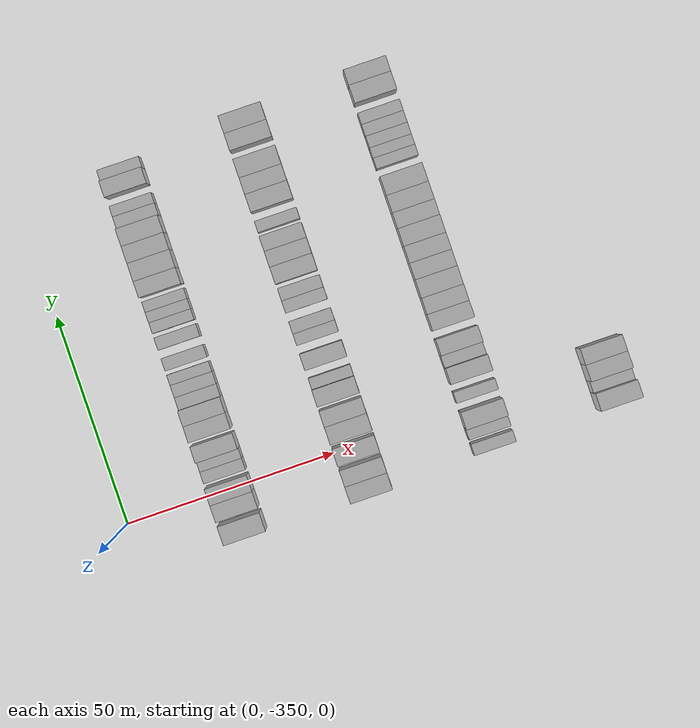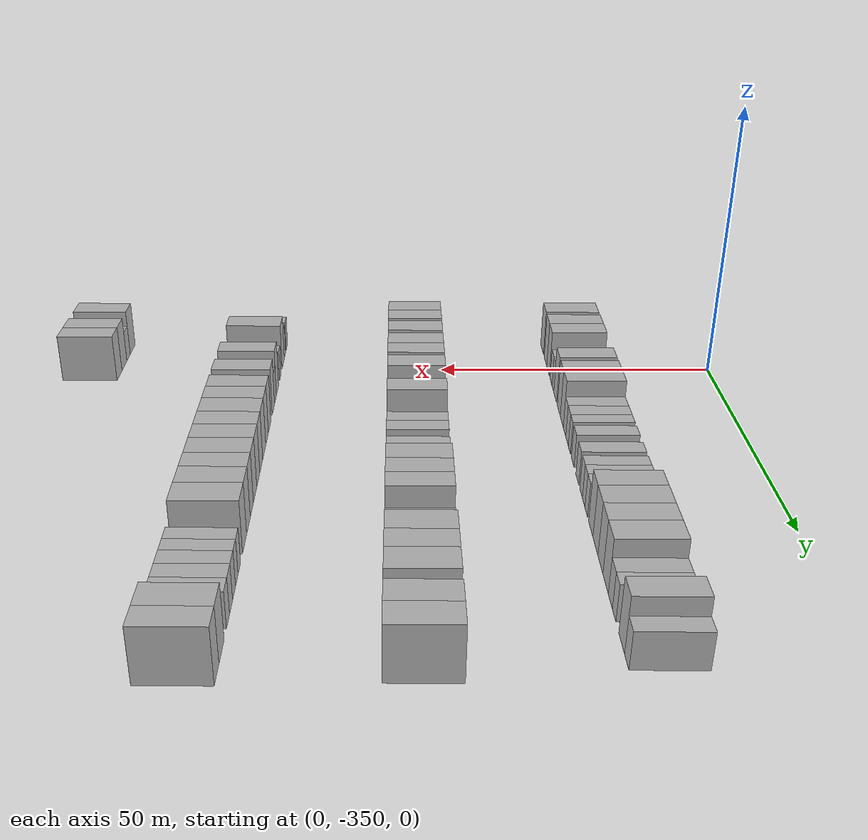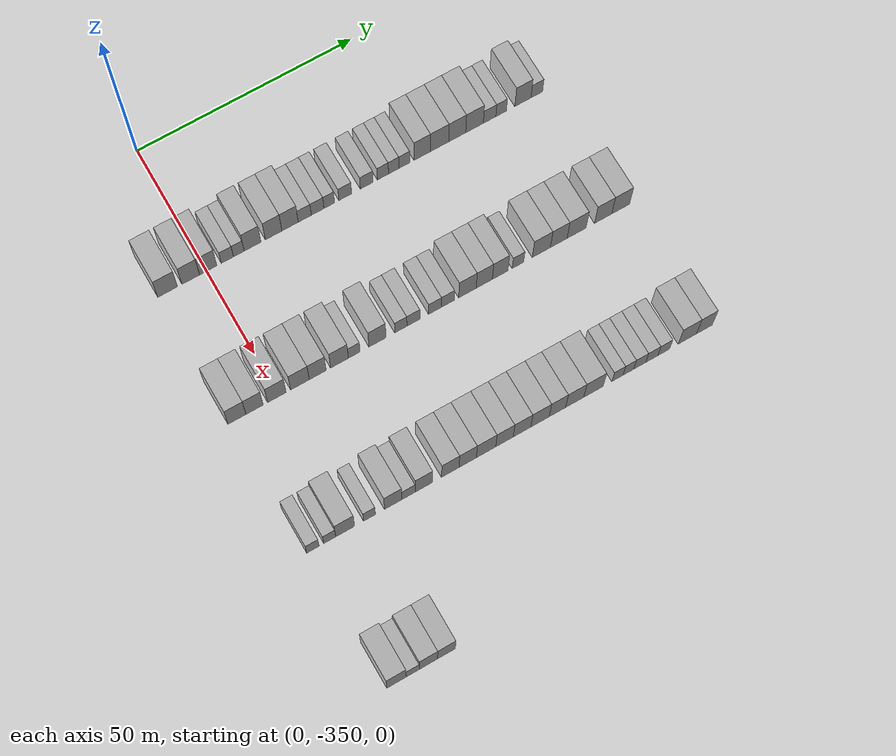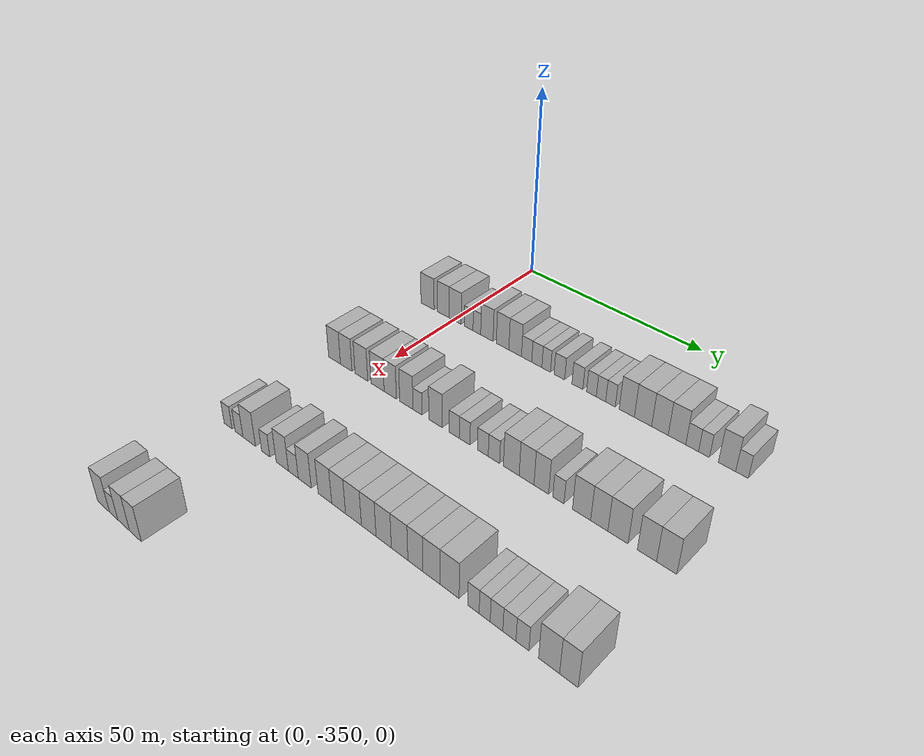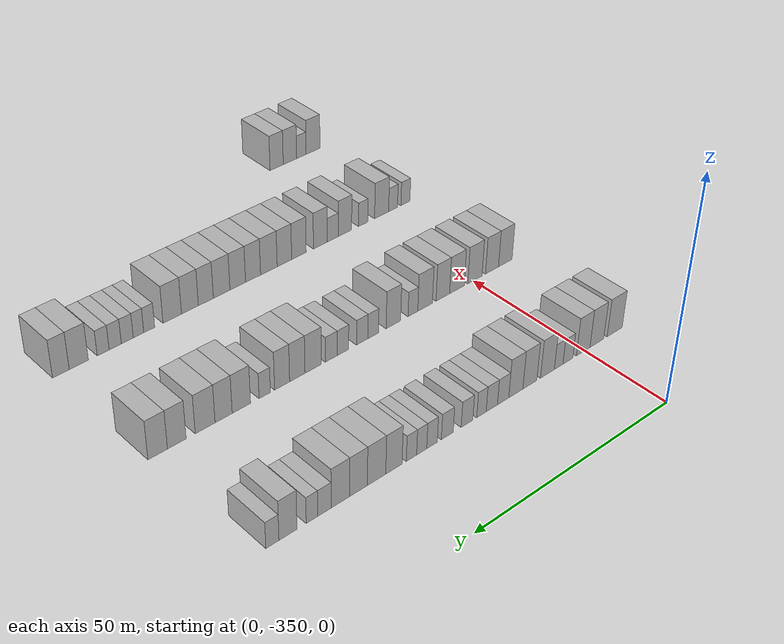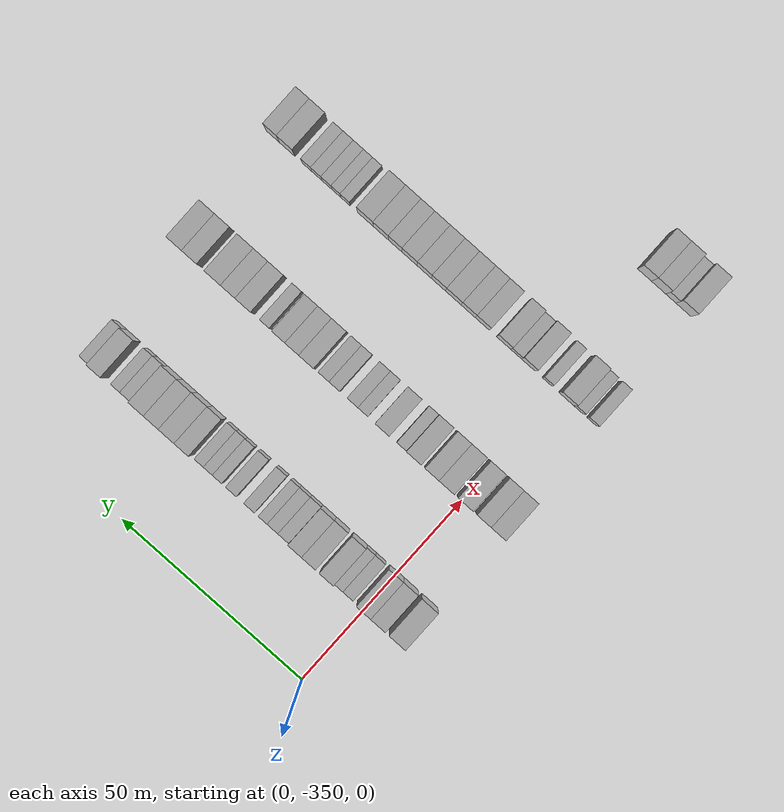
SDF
<sdf version="1.6">
 <world name="default">
  <model name="building_27">
   <static>1</static>
   <pose>25.0000 -358.7844 0 0.000000 0.000000 0.000000</pose>
   <link name="link">
    <pose>0 0 4.50 0 0 0</pose>
    <collision name="collision"><geometry><box><size>10.0000 4.4581 9.0000</size></box></geometry></collision>
    <visual name="visual">
     <cast_shadows>0</cast_shadows>
     <geometry><box><size>10.0000 4.4581 9.0000</size></box></geometry>
     <material>
      <script>
       <uri>model://HANNAS_wall/materials/scripts</uri>
       <uri>model://HANNAS_wall/materials/textures</uri>
       <name>vrc/HANNAS_wall</name>
      </script>
     </material>
    </visual>
   </link>
  </model>
  <model name="building_28">
   <static>1</static>
   <pose>25.0000 -353.5578 0 0.000000 0.000000 0.000000</pose>
   <link name="link">
    <pose>0 0 4.50 0 0 0</pose>
    <collision name="collision"><geometry><box><size>10.0000 3.9950 9.0000</size></box></geometry></collision>
    <visual name="visual">
     <cast_shadows>0</cast_shadows>
     <geometry><box><size>10.0000 3.9950 9.0000</size></box></geometry>
     <material>
      <script>
       <uri>model://HANNAS_wall/materials/scripts</uri>
       <uri>model://HANNAS_wall/materials/textures</uri>
       <name>vrc/HANNAS_wall</name>
      </script>
     </material>
    </visual>
   </link>
  </model>
  <model name="building_29">
   <static>1</static>
   <pose>25.0000 -349.6130 0 0.000000 0.000000 0.000000</pose>
   <link name="link">
    <pose>0 0 4.50 0 0 0</pose>
    <collision name="collision"><geometry><box><size>10.0000 3.8945 9.0000</size></box></geometry></collision>
    <visual name="visual">
     <cast_shadows>0</cast_shadows>
     <geometry><box><size>10.0000 3.8945 9.0000</size></box></geometry>
     <material>
      <script>
       <uri>model://HANNAS_wall/materials/scripts</uri>
       <uri>model://HANNAS_wall/materials/textures</uri>
       <name>vrc/HANNAS_wall</name>
      </script>
     </material>
    </visual>
   </link>
  </model>
  <model name="building_30">
   <static>1</static>
   <pose>25.0000 -345.2733 0 0.000000 0.000000 0.000000</pose>
   <link name="link">
    <pose>0 0 3.00 0 0 0</pose>
    <collision name="collision"><geometry><box><size>10.0000 2.7850 6.0000</size></box></geometry></collision>
    <visual name="visual">
     <cast_shadows>0</cast_shadows>
     <geometry><box><size>10.0000 2.7850 6.0000</size></box></geometry>
     <material>
      <script>
       <uri>model://HANNAS_wall/materials/scripts</uri>
       <uri>model://HANNAS_wall/materials/textures</uri>
       <name>vrc/HANNAS_wall</name>
      </script>
     </material>
    </visual>
   </link>
  </model>
  <model name="building_31">
   <static>1</static>
   <pose>25.0000 -342.6773 0 0.000000 0.000000 0.000000</pose>
   <link name="link">
    <pose>0 0 3.00 0 0 0</pose>
    <collision name="collision"><geometry><box><size>10.0000 2.4070 6.0000</size></box></geometry></collision>
    <visual name="visual">
     <cast_shadows>0</cast_shadows>
     <geometry><box><size>10.0000 2.4070 6.0000</size></box></geometry>
     <material>
      <script>
       <uri>model://HANNAS_wall/materials/scripts</uri>
       <uri>model://HANNAS_wall/materials/textures</uri>
       <name>vrc/HANNAS_wall</name>
      </script>
     </material>
    </visual>
   </link>
  </model>
  <model name="building_32">
   <static>1</static>
   <pose>25.0000 -339.5531 0 0.000000 0.000000 0.000000</pose>
   <link name="link">
    <pose>0 0 4.50 0 0 0</pose>
    <collision name="collision"><geometry><box><size>10.0000 3.8413 9.0000</size></box></geometry></collision>
    <visual name="visual">
     <cast_shadows>0</cast_shadows>
     <geometry><box><size>10.0000 3.8413 9.0000</size></box></geometry>
     <material>
      <script>
       <uri>model://HANNAS_wall/materials/scripts</uri>
       <uri>model://HANNAS_wall/materials/textures</uri>
       <name>vrc/HANNAS_wall</name>
      </script>
     </material>
    </visual>
   </link>
  </model>
  <model name="building_33">
   <static>1</static>
   <pose>25.0000 -334.7408 0 0.000000 0.000000 0.000000</pose>
   <link name="link">
    <pose>0 0 4.50 0 0 0</pose>
    <collision name="collision"><geometry><box><size>10.0000 3.7834 9.0000</size></box></geometry></collision>
    <visual name="visual">
     <cast_shadows>0</cast_shadows>
     <geometry><box><size>10.0000 3.7834 9.0000</size></box></geometry>
     <material>
      <script>
       <uri>model://HANNAS_wall/materials/scripts</uri>
       <uri>model://HANNAS_wall/materials/textures</uri>
       <name>vrc/HANNAS_wall</name>
      </script>
     </material>
    </visual>
   </link>
  </model>
  <model name="building_34">
   <static>1</static>
   <pose>25.0000 -330.9706 0 0.000000 0.000000 0.000000</pose>
   <link name="link">
    <pose>0 0 4.50 0 0 0</pose>
    <collision name="collision"><geometry><box><size>10.0000 3.7570 9.0000</size></box></geometry></collision>
    <visual name="visual">
     <cast_shadows>0</cast_shadows>
     <geometry><box><size>10.0000 3.7570 9.0000</size></box></geometry>
     <material>
      <script>
       <uri>model://HANNAS_wall/materials/scripts</uri>
       <uri>model://HANNAS_wall/materials/textures</uri>
       <name>vrc/HANNAS_wall</name>
      </script>
     </material>
    </visual>
   </link>
  </model>
  <model name="building_35">
   <static>1</static>
   <pose>25.0000 -327.5965 0 0.000000 0.000000 0.000000</pose>
   <link name="link">
    <pose>0 0 3.00 0 0 0</pose>
    <collision name="collision"><geometry><box><size>10.0000 2.9910 6.0000</size></box></geometry></collision>
    <visual name="visual">
     <cast_shadows>0</cast_shadows>
     <geometry><box><size>10.0000 2.9910 6.0000</size></box></geometry>
     <material>
      <script>
       <uri>model://HANNAS_wall/materials/scripts</uri>
       <uri>model://HANNAS_wall/materials/textures</uri>
       <name>vrc/HANNAS_wall</name>
      </script>
     </material>
    </visual>
   </link>
  </model>
  <model name="building_36">
   <static>1</static>
   <pose>25.0000 -324.6349 0 0.000000 0.000000 0.000000</pose>
   <link name="link">
    <pose>0 0 3.00 0 0 0</pose>
    <collision name="collision"><geometry><box><size>10.0000 2.9322 6.0000</size></box></geometry></collision>
    <visual name="visual">
     <cast_shadows>0</cast_shadows>
     <geometry><box><size>10.0000 2.9322 6.0000</size></box></geometry>
     <material>
      <script>
       <uri>model://HANNAS_wall/materials/scripts</uri>
       <uri>model://HANNAS_wall/materials/textures</uri>
       <name>vrc/HANNAS_wall</name>
      </script>
     </material>
    </visual>
   </link>
  </model>
  <model name="building_37">
   <static>1</static>
   <pose>25.0000 -321.9463 0 0.000000 0.000000 0.000000</pose>
   <link name="link">
    <pose>0 0 3.00 0 0 0</pose>
    <collision name="collision"><geometry><box><size>10.0000 2.4450 6.0000</size></box></geometry></collision>
    <visual name="visual">
     <cast_shadows>0</cast_shadows>
     <geometry><box><size>10.0000 2.4450 6.0000</size></box></geometry>
     <material>
      <script>
       <uri>model://HANNAS_wall/materials/scripts</uri>
       <uri>model://HANNAS_wall/materials/textures</uri>
       <name>vrc/HANNAS_wall</name>
      </script>
     </material>
    </visual>
   </link>
  </model>
  <model name="building_38">
   <static>1</static>
   <pose>25.0000 -318.2439 0 0.000000 0.000000 0.000000</pose>
   <link name="link">
    <pose>0 0 3.00 0 0 0</pose>
    <collision name="collision"><geometry><box><size>10.0000 2.9599 6.0000</size></box></geometry></collision>
    <visual name="visual">
     <cast_shadows>0</cast_shadows>
     <geometry><box><size>10.0000 2.9599 6.0000</size></box></geometry>
     <material>
      <script>
       <uri>model://HANNAS_wall/materials/scripts</uri>
       <uri>model://HANNAS_wall/materials/textures</uri>
       <name>vrc/HANNAS_wall</name>
      </script>
     </material>
    </visual>
   </link>
  </model>
  <model name="building_39">
   <static>1</static>
   <pose>25.0000 -313.2791 0 0.000000 0.000000 0.000000</pose>
   <link name="link">
    <pose>0 0 3.00 0 0 0</pose>
    <collision name="collision"><geometry><box><size>10.0000 2.9697 6.0000</size></box></geometry></collision>
    <visual name="visual">
     <cast_shadows>0</cast_shadows>
     <geometry><box><size>10.0000 2.9697 6.0000</size></box></geometry>
     <material>
      <script>
       <uri>model://HANNAS_wall/materials/scripts</uri>
       <uri>model://HANNAS_wall/materials/textures</uri>
       <name>vrc/HANNAS_wall</name>
      </script>
     </material>
    </visual>
   </link>
  </model>
  <model name="building_40">
   <static>1</static>
   <pose>25.0000 -309.5006 0 0.000000 0.000000 0.000000</pose>
   <link name="link">
    <pose>0 0 3.00 0 0 0</pose>
    <collision name="collision"><geometry><box><size>10.0000 2.5875 6.0000</size></box></geometry></collision>
    <visual name="visual">
     <cast_shadows>0</cast_shadows>
     <geometry><box><size>10.0000 2.5875 6.0000</size></box></geometry>
     <material>
      <script>
       <uri>model://HANNAS_wall/materials/scripts</uri>
       <uri>model://HANNAS_wall/materials/textures</uri>
       <name>vrc/HANNAS_wall</name>
      </script>
     </material>
    </visual>
   </link>
  </model>
  <model name="building_41">
   <static>1</static>
   <pose>25.0000 -306.9783 0 0.000000 0.000000 0.000000</pose>
   <link name="link">
    <pose>0 0 3.00 0 0 0</pose>
    <collision name="collision"><geometry><box><size>10.0000 2.4570 6.0000</size></box></geometry></collision>
    <visual name="visual">
     <cast_shadows>0</cast_shadows>
     <geometry><box><size>10.0000 2.4570 6.0000</size></box></geometry>
     <material>
      <script>
       <uri>model://HANNAS_wall/materials/scripts</uri>
       <uri>model://HANNAS_wall/materials/textures</uri>
       <name>vrc/HANNAS_wall</name>
      </script>
     </material>
    </visual>
   </link>
  </model>
  <model name="building_42">
   <static>1</static>
   <pose>25.0000 -304.4984 0 0.000000 0.000000 0.000000</pose>
   <link name="link">
    <pose>0 0 3.00 0 0 0</pose>
    <collision name="collision"><geometry><box><size>10.0000 2.5028 6.0000</size></box></geometry></collision>
    <visual name="visual">
     <cast_shadows>0</cast_shadows>
     <geometry><box><size>10.0000 2.5028 6.0000</size></box></geometry>
     <material>
      <script>
       <uri>model://HANNAS_wall/materials/scripts</uri>
       <uri>model://HANNAS_wall/materials/textures</uri>
       <name>vrc/HANNAS_wall</name>
      </script>
     </material>
    </visual>
   </link>
  </model>
  <model name="building_43">
   <static>1</static>
   <pose>25.0000 -300.3160 0 0.000000 0.000000 0.000000</pose>
   <link name="link">
    <pose>0 0 4.50 0 0 0</pose>
    <collision name="collision"><geometry><box><size>10.0000 3.8619 9.0000</size></box></geometry></collision>
    <visual name="visual">
     <cast_shadows>0</cast_shadows>
     <geometry><box><size>10.0000 3.8619 9.0000</size></box></geometry>
     <material>
      <script>
       <uri>model://HANNAS_wall/materials/scripts</uri>
       <uri>model://HANNAS_wall/materials/textures</uri>
       <name>vrc/HANNAS_wall</name>
      </script>
     </material>
    </visual>
   </link>
  </model>
  <model name="building_44">
   <static>1</static>
   <pose>25.0000 -296.2366 0 0.000000 0.000000 0.000000</pose>
   <link name="link">
    <pose>0 0 4.50 0 0 0</pose>
    <collision name="collision"><geometry><box><size>10.0000 4.2969 9.0000</size></box></geometry></collision>
    <visual name="visual">
     <cast_shadows>0</cast_shadows>
     <geometry><box><size>10.0000 4.2969 9.0000</size></box></geometry>
     <material>
      <script>
       <uri>model://HANNAS_wall/materials/scripts</uri>
       <uri>model://HANNAS_wall/materials/textures</uri>
       <name>vrc/HANNAS_wall</name>
      </script>
     </material>
    </visual>
   </link>
  </model>
  <model name="building_45">
   <static>1</static>
   <pose>25.0000 -292.0810 0 0.000000 0.000000 0.000000</pose>
   <link name="link">
    <pose>0 0 4.50 0 0 0</pose>
    <collision name="collision"><geometry><box><size>10.0000 4.0142 9.0000</size></box></geometry></collision>
    <visual name="visual">
     <cast_shadows>0</cast_shadows>
     <geometry><box><size>10.0000 4.0142 9.0000</size></box></geometry>
     <material>
      <script>
       <uri>model://HANNAS_wall/materials/scripts</uri>
       <uri>model://HANNAS_wall/materials/textures</uri>
       <name>vrc/HANNAS_wall</name>
      </script>
     </material>
    </visual>
   </link>
  </model>
  <model name="building_46">
   <static>1</static>
   <pose>25.0000 -287.9887 0 0.000000 0.000000 0.000000</pose>
   <link name="link">
    <pose>0 0 4.50 0 0 0</pose>
    <collision name="collision"><geometry><box><size>10.0000 4.1703 9.0000</size></box></geometry></collision>
    <visual name="visual">
     <cast_shadows>0</cast_shadows>
     <geometry><box><size>10.0000 4.1703 9.0000</size></box></geometry>
     <material>
      <script>
       <uri>model://HANNAS_wall/materials/scripts</uri>
       <uri>model://HANNAS_wall/materials/textures</uri>
       <name>vrc/HANNAS_wall</name>
      </script>
     </material>
    </visual>
   </link>
  </model>
  <model name="building_47">
   <static>1</static>
   <pose>25.0000 -284.4105 0 0.000000 0.000000 0.000000</pose>
   <link name="link">
    <pose>0 0 3.00 0 0 0</pose>
    <collision name="collision"><geometry><box><size>10.0000 2.9862 6.0000</size></box></geometry></collision>
    <visual name="visual">
     <cast_shadows>0</cast_shadows>
     <geometry><box><size>10.0000 2.9862 6.0000</size></box></geometry>
     <material>
      <script>
       <uri>model://HANNAS_wall/materials/scripts</uri>
       <uri>model://HANNAS_wall/materials/textures</uri>
       <name>vrc/HANNAS_wall</name>
      </script>
     </material>
    </visual>
   </link>
  </model>
  <model name="building_48">
   <static>1</static>
   <pose>25.0000 -281.6643 0 0.000000 0.000000 0.000000</pose>
   <link name="link">
    <pose>0 0 3.00 0 0 0</pose>
    <collision name="collision"><geometry><box><size>10.0000 2.5062 6.0000</size></box></geometry></collision>
    <visual name="visual">
     <cast_shadows>0</cast_shadows>
     <geometry><box><size>10.0000 2.5062 6.0000</size></box></geometry>
     <material>
      <script>
       <uri>model://HANNAS_wall/materials/scripts</uri>
       <uri>model://HANNAS_wall/materials/textures</uri>
       <name>vrc/HANNAS_wall</name>
      </script>
     </material>
    </visual>
   </link>
  </model>
  <model name="building_49">
   <static>1</static>
   <pose>25.0000 -276.4811 0 0.000000 0.000000 0.000000</pose>
   <link name="link">
    <pose>0 0 4.50 0 0 0</pose>
    <collision name="collision"><geometry><box><size>10.0000 3.8602 9.0000</size></box></geometry></collision>
    <visual name="visual">
     <cast_shadows>0</cast_shadows>
     <geometry><box><size>10.0000 3.8602 9.0000</size></box></geometry>
     <material>
      <script>
       <uri>model://HANNAS_wall/materials/scripts</uri>
       <uri>model://HANNAS_wall/materials/textures</uri>
       <name>vrc/HANNAS_wall</name>
      </script>
     </material>
    </visual>
   </link>
  </model>
  <model name="building_50">
   <static>1</static>
   <pose>25.0000 -273.1703 0 0.000000 0.000000 0.000000</pose>
   <link name="link">
    <pose>0 0 3.00 0 0 0</pose>
    <collision name="collision"><geometry><box><size>10.0000 2.7614 6.0000</size></box></geometry></collision>
    <visual name="visual">
     <cast_shadows>0</cast_shadows>
     <geometry><box><size>10.0000 2.7614 6.0000</size></box></geometry>
     <material>
      <script>
       <uri>model://HANNAS_wall/materials/scripts</uri>
       <uri>model://HANNAS_wall/materials/textures</uri>
       <name>vrc/HANNAS_wall</name>
      </script>
     </material>
    </visual>
   </link>
  </model>
  <model name="building_255">
   <static>1</static>
   <pose>55.0000 -359.3737 0 0.000000 0.000000 0.000000</pose>
   <link name="link">
    <pose>0 0 4.50 0 0 0</pose>
    <collision name="collision"><geometry><box><size>10.0000 4.0069 9.0000</size></box></geometry></collision>
    <visual name="visual">
     <cast_shadows>0</cast_shadows>
     <geometry><box><size>10.0000 4.0069 9.0000</size></box></geometry>
     <material>
      <script>
       <uri>model://HANNAS_wall/materials/scripts</uri>
       <uri>model://HANNAS_wall/materials/textures</uri>
       <name>vrc/HANNAS_wall</name>
      </script>
     </material>
    </visual>
   </link>
  </model>
  <model name="building_256">
   <static>1</static>
   <pose>55.0000 -355.4545 0 0.000000 0.000000 0.000000</pose>
   <link name="link">
    <pose>0 0 4.50 0 0 0</pose>
    <collision name="collision"><geometry><box><size>10.0000 3.8315 9.0000</size></box></geometry></collision>
    <visual name="visual">
     <cast_shadows>0</cast_shadows>
     <geometry><box><size>10.0000 3.8315 9.0000</size></box></geometry>
     <material>
      <script>
       <uri>model://HANNAS_wall/materials/scripts</uri>
       <uri>model://HANNAS_wall/materials/textures</uri>
       <name>vrc/HANNAS_wall</name>
      </script>
     </material>
    </visual>
   </link>
  </model>
  <model name="building_257">
   <static>1</static>
   <pose>55.0000 -350.4743 0 0.000000 0.000000 0.000000</pose>
   <link name="link">
    <pose>0 0 4.50 0 0 0</pose>
    <collision name="collision"><geometry><box><size>10.0000 4.1288 9.0000</size></box></geometry></collision>
    <visual name="visual">
     <cast_shadows>0</cast_shadows>
     <geometry><box><size>10.0000 4.1288 9.0000</size></box></geometry>
     <material>
      <script>
       <uri>model://HANNAS_wall/materials/scripts</uri>
       <uri>model://HANNAS_wall/materials/textures</uri>
       <name>vrc/HANNAS_wall</name>
      </script>
     </material>
    </visual>
   </link>
  </model>
  <model name="building_258">
   <static>1</static>
   <pose>55.0000 -345.3183 0 0.000000 0.000000 0.000000</pose>
   <link name="link">
    <pose>0 0 4.50 0 0 0</pose>
    <collision name="collision"><geometry><box><size>10.0000 4.1833 9.0000</size></box></geometry></collision>
    <visual name="visual">
     <cast_shadows>0</cast_shadows>
     <geometry><box><size>10.0000 4.1833 9.0000</size></box></geometry>
     <material>
      <script>
       <uri>model://HANNAS_wall/materials/scripts</uri>
       <uri>model://HANNAS_wall/materials/textures</uri>
       <name>vrc/HANNAS_wall</name>
      </script>
     </material>
    </visual>
   </link>
  </model>
  <model name="building_259">
   <static>1</static>
   <pose>55.0000 -341.3309 0 0.000000 0.000000 0.000000</pose>
   <link name="link">
    <pose>0 0 4.50 0 0 0</pose>
    <collision name="collision"><geometry><box><size>10.0000 3.7915 9.0000</size></box></geometry></collision>
    <visual name="visual">
     <cast_shadows>0</cast_shadows>
     <geometry><box><size>10.0000 3.7915 9.0000</size></box></geometry>
     <material>
      <script>
       <uri>model://HANNAS_wall/materials/scripts</uri>
       <uri>model://HANNAS_wall/materials/textures</uri>
       <name>vrc/HANNAS_wall</name>
      </script>
     </material>
    </visual>
   </link>
  </model>
  <model name="building_260">
   <static>1</static>
   <pose>55.0000 -336.4242 0 0.000000 0.000000 0.000000</pose>
   <link name="link">
    <pose>0 0 4.50 0 0 0</pose>
    <collision name="collision"><geometry><box><size>10.0000 4.0218 9.0000</size></box></geometry></collision>
    <visual name="visual">
     <cast_shadows>0</cast_shadows>
     <geometry><box><size>10.0000 4.0218 9.0000</size></box></geometry>
     <material>
      <script>
       <uri>model://HANNAS_wall/materials/scripts</uri>
       <uri>model://HANNAS_wall/materials/textures</uri>
       <name>vrc/HANNAS_wall</name>
      </script>
     </material>
    </visual>
   </link>
  </model>
  <model name="building_261">
   <static>1</static>
   <pose>55.0000 -333.0908 0 0.000000 0.000000 0.000000</pose>
   <link name="link">
    <pose>0 0 3.00 0 0 0</pose>
    <collision name="collision"><geometry><box><size>10.0000 2.6451 6.0000</size></box></geometry></collision>
    <visual name="visual">
     <cast_shadows>0</cast_shadows>
     <geometry><box><size>10.0000 2.6451 6.0000</size></box></geometry>
     <material>
      <script>
       <uri>model://HANNAS_wall/materials/scripts</uri>
       <uri>model://HANNAS_wall/materials/textures</uri>
       <name>vrc/HANNAS_wall</name>
      </script>
     </material>
    </visual>
   </link>
  </model>
  <model name="building_262">
   <static>1</static>
   <pose>55.0000 -327.8336 0 0.000000 0.000000 0.000000</pose>
   <link name="link">
    <pose>0 0 4.50 0 0 0</pose>
    <collision name="collision"><geometry><box><size>10.0000 3.8692 9.0000</size></box></geometry></collision>
    <visual name="visual">
     <cast_shadows>0</cast_shadows>
     <geometry><box><size>10.0000 3.8692 9.0000</size></box></geometry>
     <material>
      <script>
       <uri>model://HANNAS_wall/materials/scripts</uri>
       <uri>model://HANNAS_wall/materials/textures</uri>
       <name>vrc/HANNAS_wall</name>
      </script>
     </material>
    </visual>
   </link>
  </model>
  <model name="building_263">
   <static>1</static>
   <pose>55.0000 -322.5182 0 0.000000 0.000000 0.000000</pose>
   <link name="link">
    <pose>0 0 3.00 0 0 0</pose>
    <collision name="collision"><geometry><box><size>10.0000 2.7615 6.0000</size></box></geometry></collision>
    <visual name="visual">
     <cast_shadows>0</cast_shadows>
     <geometry><box><size>10.0000 2.7615 6.0000</size></box></geometry>
     <material>
      <script>
       <uri>model://HANNAS_wall/materials/scripts</uri>
       <uri>model://HANNAS_wall/materials/textures</uri>
       <name>vrc/HANNAS_wall</name>
      </script>
     </material>
    </visual>
   </link>
  </model>
  <model name="building_264">
   <static>1</static>
   <pose>55.0000 -319.6524 0 0.000000 0.000000 0.000000</pose>
   <link name="link">
    <pose>0 0 3.00 0 0 0</pose>
    <collision name="collision"><geometry><box><size>10.0000 2.9701 6.0000</size></box></geometry></collision>
    <visual name="visual">
     <cast_shadows>0</cast_shadows>
     <geometry><box><size>10.0000 2.9701 6.0000</size></box></geometry>
     <material>
      <script>
       <uri>model://HANNAS_wall/materials/scripts</uri>
       <uri>model://HANNAS_wall/materials/textures</uri>
       <name>vrc/HANNAS_wall</name>
      </script>
     </material>
    </visual>
   </link>
  </model>
  <model name="building_265">
   <static>1</static>
   <pose>55.0000 -314.7081 0 0.000000 0.000000 0.000000</pose>
   <link name="link">
    <pose>0 0 3.00 0 0 0</pose>
    <collision name="collision"><geometry><box><size>10.0000 2.9187 6.0000</size></box></geometry></collision>
    <visual name="visual">
     <cast_shadows>0</cast_shadows>
     <geometry><box><size>10.0000 2.9187 6.0000</size></box></geometry>
     <material>
      <script>
       <uri>model://HANNAS_wall/materials/scripts</uri>
       <uri>model://HANNAS_wall/materials/textures</uri>
       <name>vrc/HANNAS_wall</name>
      </script>
     </material>
    </visual>
   </link>
  </model>
  <model name="building_266">
   <static>1</static>
   <pose>55.0000 -311.7621 0 0.000000 0.000000 0.000000</pose>
   <link name="link">
    <pose>0 0 3.00 0 0 0</pose>
    <collision name="collision"><geometry><box><size>10.0000 2.9733 6.0000</size></box></geometry></collision>
    <visual name="visual">
     <cast_shadows>0</cast_shadows>
     <geometry><box><size>10.0000 2.9733 6.0000</size></box></geometry>
     <material>
      <script>
       <uri>model://HANNAS_wall/materials/scripts</uri>
       <uri>model://HANNAS_wall/materials/textures</uri>
       <name>vrc/HANNAS_wall</name>
      </script>
     </material>
    </visual>
   </link>
  </model>
  <model name="building_267">
   <static>1</static>
   <pose>55.0000 -307.2545 0 0.000000 0.000000 0.000000</pose>
   <link name="link">
    <pose>0 0 4.50 0 0 0</pose>
    <collision name="collision"><geometry><box><size>10.0000 4.0417 9.0000</size></box></geometry></collision>
    <visual name="visual">
     <cast_shadows>0</cast_shadows>
     <geometry><box><size>10.0000 4.0417 9.0000</size></box></geometry>
     <material>
      <script>
       <uri>model://HANNAS_wall/materials/scripts</uri>
       <uri>model://HANNAS_wall/materials/textures</uri>
       <name>vrc/HANNAS_wall</name>
      </script>
     </material>
    </visual>
   </link>
  </model>
  <model name="building_268">
   <static>1</static>
   <pose>55.0000 -303.3694 0 0.000000 0.000000 0.000000</pose>
   <link name="link">
    <pose>0 0 4.50 0 0 0</pose>
    <collision name="collision"><geometry><box><size>10.0000 3.7286 9.0000</size></box></geometry></collision>
    <visual name="visual">
     <cast_shadows>0</cast_shadows>
     <geometry><box><size>10.0000 3.7286 9.0000</size></box></geometry>
     <material>
      <script>
       <uri>model://HANNAS_wall/materials/scripts</uri>
       <uri>model://HANNAS_wall/materials/textures</uri>
       <name>vrc/HANNAS_wall</name>
      </script>
     </material>
    </visual>
   </link>
  </model>
  <model name="building_269">
   <static>1</static>
   <pose>55.0000 -299.6990 0 0.000000 0.000000 0.000000</pose>
   <link name="link">
    <pose>0 0 4.50 0 0 0</pose>
    <collision name="collision"><geometry><box><size>10.0000 3.6121 9.0000</size></box></geometry></collision>
    <visual name="visual">
     <cast_shadows>0</cast_shadows>
     <geometry><box><size>10.0000 3.6121 9.0000</size></box></geometry>
     <material>
      <script>
       <uri>model://HANNAS_wall/materials/scripts</uri>
       <uri>model://HANNAS_wall/materials/textures</uri>
       <name>vrc/HANNAS_wall</name>
      </script>
     </material>
    </visual>
   </link>
  </model>
  <model name="building_270">
   <static>1</static>
   <pose>55.0000 -295.5559 0 0.000000 0.000000 0.000000</pose>
   <link name="link">
    <pose>0 0 3.00 0 0 0</pose>
    <collision name="collision"><geometry><box><size>10.0000 2.6742 6.0000</size></box></geometry></collision>
    <visual name="visual">
     <cast_shadows>0</cast_shadows>
     <geometry><box><size>10.0000 2.6742 6.0000</size></box></geometry>
     <material>
      <script>
       <uri>model://HANNAS_wall/materials/scripts</uri>
       <uri>model://HANNAS_wall/materials/textures</uri>
       <name>vrc/HANNAS_wall</name>
      </script>
     </material>
    </visual>
   </link>
  </model>
  <model name="building_271">
   <static>1</static>
   <pose>55.0000 -290.1008 0 0.000000 0.000000 0.000000</pose>
   <link name="link">
    <pose>0 0 4.50 0 0 0</pose>
    <collision name="collision"><geometry><box><size>10.0000 4.2360 9.0000</size></box></geometry></collision>
    <visual name="visual">
     <cast_shadows>0</cast_shadows>
     <geometry><box><size>10.0000 4.2360 9.0000</size></box></geometry>
     <material>
      <script>
       <uri>model://HANNAS_wall/materials/scripts</uri>
       <uri>model://HANNAS_wall/materials/textures</uri>
       <name>vrc/HANNAS_wall</name>
      </script>
     </material>
    </visual>
   </link>
  </model>
  <model name="building_272">
   <static>1</static>
   <pose>55.0000 -286.0305 0 0.000000 0.000000 0.000000</pose>
   <link name="link">
    <pose>0 0 4.50 0 0 0</pose>
    <collision name="collision"><geometry><box><size>10.0000 3.9045 9.0000</size></box></geometry></collision>
    <visual name="visual">
     <cast_shadows>0</cast_shadows>
     <geometry><box><size>10.0000 3.9045 9.0000</size></box></geometry>
     <material>
      <script>
       <uri>model://HANNAS_wall/materials/scripts</uri>
       <uri>model://HANNAS_wall/materials/textures</uri>
       <name>vrc/HANNAS_wall</name>
      </script>
     </material>
    </visual>
   </link>
  </model>
  <model name="building_273">
   <static>1</static>
   <pose>55.0000 -281.8545 0 0.000000 0.000000 0.000000</pose>
   <link name="link">
    <pose>0 0 4.50 0 0 0</pose>
    <collision name="collision"><geometry><box><size>10.0000 4.4475 9.0000</size></box></geometry></collision>
    <visual name="visual">
     <cast_shadows>0</cast_shadows>
     <geometry><box><size>10.0000 4.4475 9.0000</size></box></geometry>
     <material>
      <script>
       <uri>model://HANNAS_wall/materials/scripts</uri>
       <uri>model://HANNAS_wall/materials/textures</uri>
       <name>vrc/HANNAS_wall</name>
      </script>
     </material>
    </visual>
   </link>
  </model>
  <model name="building_274">
   <static>1</static>
   <pose>55.0000 -275.5912 0 0.000000 0.000000 0.000000</pose>
   <link name="link">
    <pose>0 0 4.50 0 0 0</pose>
    <collision name="collision"><geometry><box><size>10.0000 4.0790 9.0000</size></box></geometry></collision>
    <visual name="visual">
     <cast_shadows>0</cast_shadows>
     <geometry><box><size>10.0000 4.0790 9.0000</size></box></geometry>
     <material>
      <script>
       <uri>model://HANNAS_wall/materials/scripts</uri>
       <uri>model://HANNAS_wall/materials/textures</uri>
       <name>vrc/HANNAS_wall</name>
      </script>
     </material>
    </visual>
   </link>
  </model>
  <model name="building_275">
   <static>1</static>
   <pose>55.0000 -271.4515 0 0.000000 0.000000 0.000000</pose>
   <link name="link">
    <pose>0 0 4.50 0 0 0</pose>
    <collision name="collision"><geometry><box><size>10.0000 4.2004 9.0000</size></box></geometry></collision>
    <visual name="visual">
     <cast_shadows>0</cast_shadows>
     <geometry><box><size>10.0000 4.2004 9.0000</size></box></geometry>
     <material>
      <script>
       <uri>model://HANNAS_wall/materials/scripts</uri>
       <uri>model://HANNAS_wall/materials/textures</uri>
       <name>vrc/HANNAS_wall</name>
      </script>
     </material>
    </visual>
   </link>
  </model>
  <model name="building_490">
   <static>1</static>
   <pose>85.0000 -359.0842 0 0.000000 0.000000 0.000000</pose>
   <link name="link">
    <pose>0 0 3.00 0 0 0</pose>
    <collision name="collision"><geometry><box><size>10.0000 2.7138 6.0000</size></box></geometry></collision>
    <visual name="visual">
     <cast_shadows>0</cast_shadows>
     <geometry><box><size>10.0000 2.7138 6.0000</size></box></geometry>
     <material>
      <script>
       <uri>model://HANNAS_wall/materials/scripts</uri>
       <uri>model://HANNAS_wall/materials/textures</uri>
       <name>vrc/HANNAS_wall</name>
      </script>
     </material>
    </visual>
   </link>
  </model>
  <model name="building_491">
   <static>1</static>
   <pose>85.0000 -355.4044 0 0.000000 0.000000 0.000000</pose>
   <link name="link">
    <pose>0 0 3.00 0 0 0</pose>
    <collision name="collision"><geometry><box><size>10.0000 2.6458 6.0000</size></box></geometry></collision>
    <visual name="visual">
     <cast_shadows>0</cast_shadows>
     <geometry><box><size>10.0000 2.6458 6.0000</size></box></geometry>
     <material>
      <script>
       <uri>model://HANNAS_wall/materials/scripts</uri>
       <uri>model://HANNAS_wall/materials/textures</uri>
       <name>vrc/HANNAS_wall</name>
      </script>
     </material>
    </visual>
   </link>
  </model>
  <model name="building_492">
   <static>1</static>
   <pose>85.0000 -352.0195 0 0.000000 0.000000 0.000000</pose>
   <link name="link">
    <pose>0 0 4.50 0 0 0</pose>
    <collision name="collision"><geometry><box><size>10.0000 4.1242 9.0000</size></box></geometry></collision>
    <visual name="visual">
     <cast_shadows>0</cast_shadows>
     <geometry><box><size>10.0000 4.1242 9.0000</size></box></geometry>
     <material>
      <script>
       <uri>model://HANNAS_wall/materials/scripts</uri>
       <uri>model://HANNAS_wall/materials/textures</uri>
       <name>vrc/HANNAS_wall</name>
      </script>
     </material>
    </visual>
   </link>
  </model>
  <model name="building_493">
   <static>1</static>
   <pose>85.0000 -346.6470 0 0.000000 0.000000 0.000000</pose>
   <link name="link">
    <pose>0 0 3.00 0 0 0</pose>
    <collision name="collision"><geometry><box><size>10.0000 2.6207 6.0000</size></box></geometry></collision>
    <visual name="visual">
     <cast_shadows>0</cast_shadows>
     <geometry><box><size>10.0000 2.6207 6.0000</size></box></geometry>
     <material>
      <script>
       <uri>model://HANNAS_wall/materials/scripts</uri>
       <uri>model://HANNAS_wall/materials/textures</uri>
       <name>vrc/HANNAS_wall</name>
      </script>
     </material>
    </visual>
   </link>
  </model>
  <model name="building_494">
   <static>1</static>
   <pose>85.0000 -341.4260 0 0.000000 0.000000 0.000000</pose>
   <link name="link">
    <pose>0 0 4.50 0 0 0</pose>
    <collision name="collision"><geometry><box><size>10.0000 3.8214 9.0000</size></box></geometry></collision>
    <visual name="visual">
     <cast_shadows>0</cast_shadows>
     <geometry><box><size>10.0000 3.8214 9.0000</size></box></geometry>
     <material>
      <script>
       <uri>model://HANNAS_wall/materials/scripts</uri>
       <uri>model://HANNAS_wall/materials/textures</uri>
       <name>vrc/HANNAS_wall</name>
      </script>
     </material>
    </visual>
   </link>
  </model>
  <model name="building_495">
   <static>1</static>
   <pose>85.0000 -338.0192 0 0.000000 0.000000 0.000000</pose>
   <link name="link">
    <pose>0 0 3.00 0 0 0</pose>
    <collision name="collision"><geometry><box><size>10.0000 2.9921 6.0000</size></box></geometry></collision>
    <visual name="visual">
     <cast_shadows>0</cast_shadows>
     <geometry><box><size>10.0000 2.9921 6.0000</size></box></geometry>
     <material>
      <script>
       <uri>model://HANNAS_wall/materials/scripts</uri>
       <uri>model://HANNAS_wall/materials/textures</uri>
       <name>vrc/HANNAS_wall</name>
      </script>
     </material>
    </visual>
   </link>
  </model>
  <model name="building_496">
   <static>1</static>
   <pose>85.0000 -334.5876 0 0.000000 0.000000 0.000000</pose>
   <link name="link">
    <pose>0 0 4.50 0 0 0</pose>
    <collision name="collision"><geometry><box><size>10.0000 3.8712 9.0000</size></box></geometry></collision>
    <visual name="visual">
     <cast_shadows>0</cast_shadows>
     <geometry><box><size>10.0000 3.8712 9.0000</size></box></geometry>
     <material>
      <script>
       <uri>model://HANNAS_wall/materials/scripts</uri>
       <uri>model://HANNAS_wall/materials/textures</uri>
       <name>vrc/HANNAS_wall</name>
      </script>
     </material>
    </visual>
   </link>
  </model>
  <model name="building_497">
   <static>1</static>
   <pose>85.0000 -328.6909 0 0.000000 0.000000 0.000000</pose>
   <link name="link">
    <pose>0 0 4.50 0 0 0</pose>
    <collision name="collision"><geometry><box><size>10.0000 3.9220 9.0000</size></box></geometry></collision>
    <visual name="visual">
     <cast_shadows>0</cast_shadows>
     <geometry><box><size>10.0000 3.9220 9.0000</size></box></geometry>
     <material>
      <script>
       <uri>model://HANNAS_wall/materials/scripts</uri>
       <uri>model://HANNAS_wall/materials/textures</uri>
       <name>vrc/HANNAS_wall</name>
      </script>
     </material>
    </visual>
   </link>
  </model>
  <model name="building_498">
   <static>1</static>
   <pose>85.0000 -324.7886 0 0.000000 0.000000 0.000000</pose>
   <link name="link">
    <pose>0 0 4.50 0 0 0</pose>
    <collision name="collision"><geometry><box><size>10.0000 3.8826 9.0000</size></box></geometry></collision>
    <visual name="visual">
     <cast_shadows>0</cast_shadows>
     <geometry><box><size>10.0000 3.8826 9.0000</size></box></geometry>
     <material>
      <script>
       <uri>model://HANNAS_wall/materials/scripts</uri>
       <uri>model://HANNAS_wall/materials/textures</uri>
       <name>vrc/HANNAS_wall</name>
      </script>
     </material>
    </visual>
   </link>
  </model>
  <model name="building_499">
   <static>1</static>
   <pose>85.0000 -320.6627 0 0.000000 0.000000 0.000000</pose>
   <link name="link">
    <pose>0 0 4.50 0 0 0</pose>
    <collision name="collision"><geometry><box><size>10.0000 4.3693 9.0000</size></box></geometry></collision>
    <visual name="visual">
     <cast_shadows>0</cast_shadows>
     <geometry><box><size>10.0000 4.3693 9.0000</size></box></geometry>
     <material>
      <script>
       <uri>model://HANNAS_wall/materials/scripts</uri>
       <uri>model://HANNAS_wall/materials/textures</uri>
       <name>vrc/HANNAS_wall</name>
      </script>
     </material>
    </visual>
   </link>
  </model>
  <model name="building_500">
   <static>1</static>
   <pose>85.0000 -316.5197 0 0.000000 0.000000 0.000000</pose>
   <link name="link">
    <pose>0 0 4.50 0 0 0</pose>
    <collision name="collision"><geometry><box><size>10.0000 3.9168 9.0000</size></box></geometry></collision>
    <visual name="visual">
     <cast_shadows>0</cast_shadows>
     <geometry><box><size>10.0000 3.9168 9.0000</size></box></geometry>
     <material>
      <script>
       <uri>model://HANNAS_wall/materials/scripts</uri>
       <uri>model://HANNAS_wall/materials/textures</uri>
       <name>vrc/HANNAS_wall</name>
      </script>
     </material>
    </visual>
   </link>
  </model>
  <model name="building_501">
   <static>1</static>
   <pose>85.0000 -312.5577 0 0.000000 0.000000 0.000000</pose>
   <link name="link">
    <pose>0 0 4.50 0 0 0</pose>
    <collision name="collision"><geometry><box><size>10.0000 4.0072 9.0000</size></box></geometry></collision>
    <visual name="visual">
     <cast_shadows>0</cast_shadows>
     <geometry><box><size>10.0000 4.0072 9.0000</size></box></geometry>
     <material>
      <script>
       <uri>model://HANNAS_wall/materials/scripts</uri>
       <uri>model://HANNAS_wall/materials/textures</uri>
       <name>vrc/HANNAS_wall</name>
      </script>
     </material>
    </visual>
   </link>
  </model>
  <model name="building_502">
   <static>1</static>
   <pose>85.0000 -308.4540 0 0.000000 0.000000 0.000000</pose>
   <link name="link">
    <pose>0 0 4.50 0 0 0</pose>
    <collision name="collision"><geometry><box><size>10.0000 4.2002 9.0000</size></box></geometry></collision>
    <visual name="visual">
     <cast_shadows>0</cast_shadows>
     <geometry><box><size>10.0000 4.2002 9.0000</size></box></geometry>
     <material>
      <script>
       <uri>model://HANNAS_wall/materials/scripts</uri>
       <uri>model://HANNAS_wall/materials/textures</uri>
       <name>vrc/HANNAS_wall</name>
      </script>
     </material>
    </visual>
   </link>
  </model>
  <model name="building_503">
   <static>1</static>
   <pose>85.0000 -304.4898 0 0.000000 0.000000 0.000000</pose>
   <link name="link">
    <pose>0 0 4.50 0 0 0</pose>
    <collision name="collision"><geometry><box><size>10.0000 3.7282 9.0000</size></box></geometry></collision>
    <visual name="visual">
     <cast_shadows>0</cast_shadows>
     <geometry><box><size>10.0000 3.7282 9.0000</size></box></geometry>
     <material>
      <script>
       <uri>model://HANNAS_wall/materials/scripts</uri>
       <uri>model://HANNAS_wall/materials/textures</uri>
       <name>vrc/HANNAS_wall</name>
      </script>
     </material>
    </visual>
   </link>
  </model>
  <model name="building_504">
   <static>1</static>
   <pose>85.0000 -300.5477 0 0.000000 0.000000 0.000000</pose>
   <link name="link">
    <pose>0 0 4.50 0 0 0</pose>
    <collision name="collision"><geometry><box><size>10.0000 4.1562 9.0000</size></box></geometry></collision>
    <visual name="visual">
     <cast_shadows>0</cast_shadows>
     <geometry><box><size>10.0000 4.1562 9.0000</size></box></geometry>
     <material>
      <script>
       <uri>model://HANNAS_wall/materials/scripts</uri>
       <uri>model://HANNAS_wall/materials/textures</uri>
       <name>vrc/HANNAS_wall</name>
      </script>
     </material>
    </visual>
   </link>
  </model>
  <model name="building_505">
   <static>1</static>
   <pose>85.0000 -296.2341 0 0.000000 0.000000 0.000000</pose>
   <link name="link">
    <pose>0 0 4.50 0 0 0</pose>
    <collision name="collision"><geometry><box><size>10.0000 4.4709 9.0000</size></box></geometry></collision>
    <visual name="visual">
     <cast_shadows>0</cast_shadows>
     <geometry><box><size>10.0000 4.4709 9.0000</size></box></geometry>
     <material>
      <script>
       <uri>model://HANNAS_wall/materials/scripts</uri>
       <uri>model://HANNAS_wall/materials/textures</uri>
       <name>vrc/HANNAS_wall</name>
      </script>
     </material>
    </visual>
   </link>
  </model>
  <model name="building_506">
   <static>1</static>
   <pose>85.0000 -290.7095 0 0.000000 0.000000 0.000000</pose>
   <link name="link">
    <pose>0 0 3.00 0 0 0</pose>
    <collision name="collision"><geometry><box><size>10.0000 2.5783 6.0000</size></box></geometry></collision>
    <visual name="visual">
     <cast_shadows>0</cast_shadows>
     <geometry><box><size>10.0000 2.5783 6.0000</size></box></geometry>
     <material>
      <script>
       <uri>model://HANNAS_wall/materials/scripts</uri>
       <uri>model://HANNAS_wall/materials/textures</uri>
       <name>vrc/HANNAS_wall</name>
      </script>
     </material>
    </visual>
   </link>
  </model>
  <model name="building_507">
   <static>1</static>
   <pose>85.0000 -288.1834 0 0.000000 0.000000 0.000000</pose>
   <link name="link">
    <pose>0 0 3.00 0 0 0</pose>
    <collision name="collision"><geometry><box><size>10.0000 2.4739 6.0000</size></box></geometry></collision>
    <visual name="visual">
     <cast_shadows>0</cast_shadows>
     <geometry><box><size>10.0000 2.4739 6.0000</size></box></geometry>
     <material>
      <script>
       <uri>model://HANNAS_wall/materials/scripts</uri>
       <uri>model://HANNAS_wall/materials/textures</uri>
       <name>vrc/HANNAS_wall</name>
      </script>
     </material>
    </visual>
   </link>
  </model>
  <model name="building_508">
   <static>1</static>
   <pose>85.0000 -285.5595 0 0.000000 0.000000 0.000000</pose>
   <link name="link">
    <pose>0 0 3.00 0 0 0</pose>
    <collision name="collision"><geometry><box><size>10.0000 2.7739 6.0000</size></box></geometry></collision>
    <visual name="visual">
     <cast_shadows>0</cast_shadows>
     <geometry><box><size>10.0000 2.7739 6.0000</size></box></geometry>
     <material>
      <script>
       <uri>model://HANNAS_wall/materials/scripts</uri>
       <uri>model://HANNAS_wall/materials/textures</uri>
       <name>vrc/HANNAS_wall</name>
      </script>
     </material>
    </visual>
   </link>
  </model>
  <model name="building_509">
   <static>1</static>
   <pose>85.0000 -282.7669 0 0.000000 0.000000 0.000000</pose>
   <link name="link">
    <pose>0 0 3.00 0 0 0</pose>
    <collision name="collision"><geometry><box><size>10.0000 2.8113 6.0000</size></box></geometry></collision>
    <visual name="visual">
     <cast_shadows>0</cast_shadows>
     <geometry><box><size>10.0000 2.8113 6.0000</size></box></geometry>
     <material>
      <script>
       <uri>model://HANNAS_wall/materials/scripts</uri>
       <uri>model://HANNAS_wall/materials/textures</uri>
       <name>vrc/HANNAS_wall</name>
      </script>
     </material>
    </visual>
   </link>
  </model>
  <model name="building_510">
   <static>1</static>
   <pose>85.0000 -279.9956 0 0.000000 0.000000 0.000000</pose>
   <link name="link">
    <pose>0 0 3.00 0 0 0</pose>
    <collision name="collision"><geometry><box><size>10.0000 2.7312 6.0000</size></box></geometry></collision>
    <visual name="visual">
     <cast_shadows>0</cast_shadows>
     <geometry><box><size>10.0000 2.7312 6.0000</size></box></geometry>
     <material>
      <script>
       <uri>model://HANNAS_wall/materials/scripts</uri>
       <uri>model://HANNAS_wall/materials/textures</uri>
       <name>vrc/HANNAS_wall</name>
      </script>
     </material>
    </visual>
   </link>
  </model>
  <model name="building_511">
   <static>1</static>
   <pose>85.0000 -274.4927 0 0.000000 0.000000 0.000000</pose>
   <link name="link">
    <pose>0 0 4.50 0 0 0</pose>
    <collision name="collision"><geometry><box><size>10.0000 4.2746 9.0000</size></box></geometry></collision>
    <visual name="visual">
     <cast_shadows>0</cast_shadows>
     <geometry><box><size>10.0000 4.2746 9.0000</size></box></geometry>
     <material>
      <script>
       <uri>model://HANNAS_wall/materials/scripts</uri>
       <uri>model://HANNAS_wall/materials/textures</uri>
       <name>vrc/HANNAS_wall</name>
      </script>
     </material>
    </visual>
   </link>
  </model>
  <model name="building_512">
   <static>1</static>
   <pose>85.0000 -270.5158 0 0.000000 0.000000 0.000000</pose>
   <link name="link">
    <pose>0 0 4.50 0 0 0</pose>
    <collision name="collision"><geometry><box><size>10.0000 3.6794 9.0000</size></box></geometry></collision>
    <visual name="visual">
     <cast_shadows>0</cast_shadows>
     <geometry><box><size>10.0000 3.6794 9.0000</size></box></geometry>
     <material>
      <script>
       <uri>model://HANNAS_wall/materials/scripts</uri>
       <uri>model://HANNAS_wall/materials/textures</uri>
       <name>vrc/HANNAS_wall</name>
      </script>
     </material>
    </visual>
   </link>
  </model>
  <model name="building_707">
   <static>1</static>
   <pose>115.0000 -357.8553 0 0.000000 0.000000 0.000000</pose>
   <link name="link">
    <pose>0 0 4.50 0 0 0</pose>
    <collision name="collision"><geometry><box><size>10.0000 4.1848 9.0000</size></box></geometry></collision>
    <visual name="visual">
     <cast_shadows>0</cast_shadows>
     <geometry><box><size>10.0000 4.1848 9.0000</size></box></geometry>
     <material>
      <script>
       <uri>model://HANNAS_wall/materials/scripts</uri>
       <uri>model://HANNAS_wall/materials/textures</uri>
       <name>vrc/HANNAS_wall</name>
      </script>
     </material>
    </visual>
   </link>
  </model>
  <model name="building_708">
   <static>1</static>
   <pose>115.0000 -354.3502 0 0.000000 0.000000 0.000000</pose>
   <link name="link">
    <pose>0 0 3.00 0 0 0</pose>
    <collision name="collision"><geometry><box><size>10.0000 2.8253 6.0000</size></box></geometry></collision>
    <visual name="visual">
     <cast_shadows>0</cast_shadows>
     <geometry><box><size>10.0000 2.8253 6.0000</size></box></geometry>
     <material>
      <script>
       <uri>model://HANNAS_wall/materials/scripts</uri>
       <uri>model://HANNAS_wall/materials/textures</uri>
       <name>vrc/HANNAS_wall</name>
      </script>
     </material>
    </visual>
   </link>
  </model>
  <model name="building_709">
   <static>1</static>
   <pose>115.0000 -350.9519 0 0.000000 0.000000 0.000000</pose>
   <link name="link">
    <pose>0 0 4.50 0 0 0</pose>
    <collision name="collision"><geometry><box><size>10.0000 3.9711 9.0000</size></box></geometry></collision>
    <visual name="visual">
     <cast_shadows>0</cast_shadows>
     <geometry><box><size>10.0000 3.9711 9.0000</size></box></geometry>
     <material>
      <script>
       <uri>model://HANNAS_wall/materials/scripts</uri>
       <uri>model://HANNAS_wall/materials/textures</uri>
       <name>vrc/HANNAS_wall</name>
      </script>
     </material>
    </visual>
   </link>
  </model>
  <model name="building_710">
   <static>1</static>
   <pose>115.0000 -347.0281 0 0.000000 0.000000 0.000000</pose>
   <link name="link">
    <pose>0 0 4.50 0 0 0</pose>
    <collision name="collision"><geometry><box><size>10.0000 3.8765 9.0000</size></box></geometry></collision>
    <visual name="visual">
     <cast_shadows>0</cast_shadows>
     <geometry><box><size>10.0000 3.8765 9.0000</size></box></geometry>
     <material>
      <script>
       <uri>model://HANNAS_wall/materials/scripts</uri>
       <uri>model://HANNAS_wall/materials/textures</uri>
       <name>vrc/HANNAS_wall</name>
      </script>
     </material>
    </visual>
   </link>
  </model>
 </world>
</sdf>
